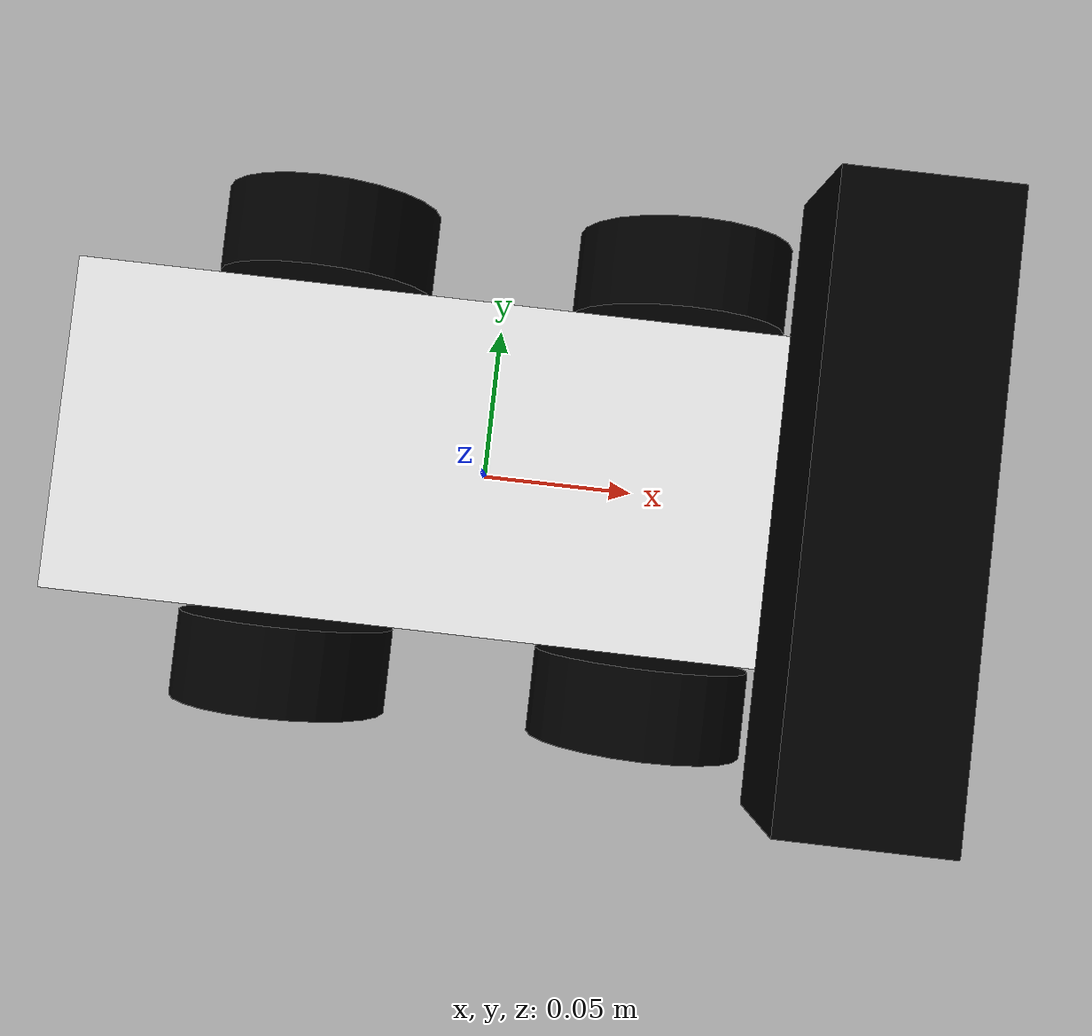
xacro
<?xml version="1.0"?>
<robot name="imibot" xmlns:xacro="http://ros.org/wiki/xacro">

  <xacro:property name="M_PI" value="3.14159"/>
  <xacro:arg name="robot_namespace" default="/" />

  <!-- Base Size -->
  <xacro:property name="base_x_size" value="0.255" />
  <xacro:property name="base_y_size" value="0.1" />
  <xacro:property name="base_z_size" value="0.039" />

  <xacro:arg name="xtion_enabled" default="true" />
  <xacro:arg name="xtion_xyz" default="$(optenv imibot_XTION_XYZ ${base_x_size/2 - 0.015} 0 ${base_z_size + 0.032})" />
  <xacro:arg name="xtion_rpy" default="$(optenv imibot_XTION_RPY 0 0 0)" />

  <!--xacro:arg name="urdf_extras" default="empty.urdf" /-->

  <!-- Included URDF/XACRO Files -->
  <xacro:include filename="$(find imibot_description)/urdf/wheel.urdf.xacro" />
  <xacro:include filename="$(find imibot_description)/urdf/accessories/xtion_camera.urdf.xacro"/>
  <!--xacro:include filename="$(find imibot_description)/urdf/accessories/kinect_camera.urdf.xacro"/-->
  <!--xacro:include filename="$(find imibot_description)/urdf/decorations.urdf.xacro" /-->

  <!-- Wheel Mounting Positions -->
  <xacro:property name="wheelbase" value="0.111" />
  <xacro:property name="track" value="0.131" />
  <xacro:property name="wheel_vertical_offset" value="0.0331" />

  <!-- Wheel Properties -->
  <xacro:property name="wheel_length" value="0.0261" />
  <xacro:property name="wheel_radius" value="0.0331" />

  <!-- Base link is the center of the robot's bottom plate -->
  <link name="base_link">
    <visual>
      <origin xyz="0 0 0.032" rpy="0 0 0" />
      <geometry>
        <!--mesh filename="package://imibot_description/meshes/base_link.dae" /-->
        <box size="${base_x_size} ${base_y_size} ${base_z_size}"/>
      </geometry>
      <material name="white">
        <color rgba="1 1 1 1"/>
      </material>
    </visual>
    <collision>
      <origin xyz="0 0 0.032" rpy="0 0 0" />
      <geometry>
        <box size="${base_x_size} ${base_y_size} ${base_z_size}"/>
      </geometry>
    </collision>
  </link>

  <!-- Base footprint is on the ground under the robot -->
  <link name="base_footprint">
    <origin rpy="0 0 0" />
  </link>

  <joint name="base_footprint_joint" type="fixed">
    <origin xyz="0 0 ${wheel_vertical_offset - wheel_radius}" rpy="0 0 0" />
    <parent link="base_link" />
    <child link="base_footprint" />
  </joint>

  <!-- Interial link stores the robot's inertial information -->
  <link name="inertial_link">
    <inertial>
      <mass value="3" />
      <origin xyz="0 0 0.032" />
      <inertia ixx="0.0282916666667" ixy="0" ixz="0" iyy="0.0282916666667" iyz="0" izz="0.05625"/>
    </inertial>
  </link>

  <joint name="inertial_joint" type="fixed">
    <origin xyz="0 0 0" rpy="0 0 0" />
    <parent link="base_link" />
    <child link="inertial_link" />
  </joint>

  <!-- IMU Link is the standard mounting position for the UM6 IMU.-->
  <!-- Can be modified with environment variables in /etc/ros/setup.bash -->
  <link name="imu_link"/>
  <joint name="imu_joint" type="fixed">
    <origin xyz="$(optenv imibot_IMU_XYZ 0 0 0)" rpy="$(optenv imibot_IMU_RPY 0 0 0)" />
    <parent link="base_link" />
    <child link="imu_link" />
  </joint>

  <!-- imibot wheel macros -->
  <xacro:imibot_wheel wheel_prefix="front_left">
    <origin xyz="${wheelbase/2} ${track/2} ${wheel_vertical_offset}" rpy="0 0 0" />
  </xacro:imibot_wheel>
  <xacro:imibot_wheel wheel_prefix="front_right">
    <origin xyz="${wheelbase/2} ${-track/2} ${wheel_vertical_offset}" rpy="0 0 0" />
  </xacro:imibot_wheel>
  <xacro:imibot_wheel wheel_prefix="rear_left">
    <origin xyz="${-wheelbase/2} ${track/2} ${wheel_vertical_offset}" rpy="0 0 0" />
  </xacro:imibot_wheel>
  <xacro:imibot_wheel wheel_prefix="rear_right">
    <origin xyz="${-wheelbase/2} ${-track/2} ${wheel_vertical_offset}" rpy="0 0 0" />
  </xacro:imibot_wheel>

  <!--xacro:imibot_decorate /-->

  <xacro:if value="$(arg xtion_enabled)">

    <joint name="xtion_frame_joint" type="fixed">
      <origin xyz="$(arg xtion_xyz)" rpy="$(arg xtion_rpy)" />
      <parent link="base_link"/>
      <child link="camera_link"/>
    </joint>

    <xacro:imibot_xtion prefix="camera" robot_namespace="$(arg robot_namespace)"/>
  </xacro:if>

  <!-- Optional custom includes. -->
  <!--xacro:include filename="$(arg urdf_extras)" /-->

</robot>

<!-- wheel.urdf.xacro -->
<robot xmlns:xacro="http://ros.org/wiki/xacro" name="imibot_wheel">

	<xacro:macro name="imibot_wheel" params="wheel_prefix *joint_pose">
		<link name="${wheel_prefix}_wheel_link">
			<visual>
				<origin xyz="0 0 0" rpy="${M_PI/2} 0 0" />
				<geometry>
					<!--mesh filename="package://imibot_description/meshes/wheel.dae" /-->
					<cylinder radius="${wheel_radius}" length="${wheel_length}"/>
				</geometry>
				<material name="black">
					<color rgba="0 0 0 1"/>
				</material>
			</visual>
			<collision>
				<origin xyz="0 0 0" rpy="${M_PI/2} 0 0" />
				<geometry>
					<cylinder length="${wheel_length}" radius="${wheel_radius}" />
				</geometry>
			</collision>
		</link>

		<gazebo reference="${wheel_prefix}_wheel_link">
			<mu1 value="1.0"/>
			<mu2 value="1.0"/>
			<kp value="10000000.0" />
			<kd value="1.0" />
			<fdir1 value="1 0 0"/>
		</gazebo>

		<joint name="${wheel_prefix}_wheel" type="continuous">
			<parent link="base_link"/>
			<child link="${wheel_prefix}_wheel_link"/>
			<xacro:insert_block name="joint_pose"/>
			<axis xyz="0 1 0" rpy="0 0 0" />
		</joint>

		<transmission name="${wheel_prefix}_wheel_trans" type="SimpleTransmission">
			<type>transmission_interface/SimpleTransmission</type>
			<actuator name="${wheel_prefix}_wheel_motor">
				<mechanicalReduction>1</mechanicalReduction>
			</actuator>
			<joint name="${wheel_prefix}_wheel">
				<hardwareInterface>hardware_interface/VelocityJointInterface</hardwareInterface>
			</joint>
		</transmission>

	</xacro:macro>
</robot>

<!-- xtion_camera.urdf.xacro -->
<robot xmlns:xacro="http://ros.org/wiki/xacro" name="imibot_xtion">

	<xacro:macro name="imibot_xtion" params="prefix:=camera robot_namespace:=/">
		<!-- Create kinect reference frame -->
        <!-- Add mesh for kinect -->
        <link name="camera_link">
          <origin xyz="0 0 0" rpy="0 0 0"/>
          <visual>
            <origin xyz="0 0 0" rpy="0 0 0"/>
            <geometry>
              <box size="0.05 0.18 0.04"/>
            </geometry>
            <material name="black">
              <color rgba="0 0 0 1"/>
            </material>
          </visual>
          <collision>
            <geometry>
              <box size="0.03 0.18 0.04"/>
            </geometry>
          </collision>
        </link>

        <joint name="${prefix}_optical_joint" type="fixed">
          <origin xyz="0 0 0" rpy="-1.5708 0 -1.5708"/>
          <parent link="${prefix}_link"/>
          <child link="${prefix}_frame_optical"/>
        </joint>

        <link name="${prefix}_frame_optical"/>

	</xacro:macro>
</robot>
